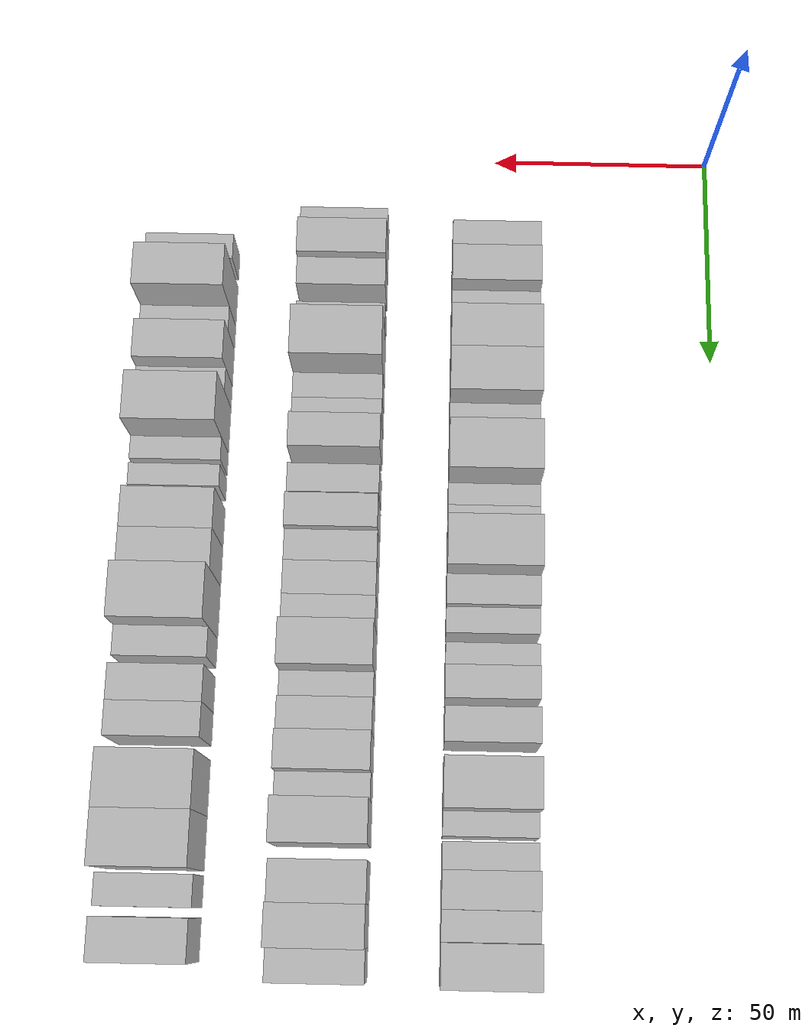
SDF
<sdf version="1.6">
 <world name="default">
  <model name="building_42">
   <static>1</static>
   <pose>50.0000 25.6167 0 0.000000 0.000000 0.000000</pose>
   <link name="link">
    <pose>0 0 7.50 0 0 0</pose>
    <collision name="collision"><geometry><box><size>20.0000 6.2672 15.0000</size></box></geometry></collision>
    <visual name="visual">
     <cast_shadows>0</cast_shadows>
     <geometry><box><size>20.0000 6.2672 15.0000</size></box></geometry>
     <material>
      <script>
       <uri>model://HANNAS_wall/materials/scripts</uri>
       <uri>model://HANNAS_wall/materials/textures</uri>
       <name>vrc/HANNAS_wall</name>
      </script>
     </material>
    </visual>
   </link>
  </model>
  <model name="building_43">
   <static>1</static>
   <pose>50.0000 34.0003 0 0.000000 0.000000 0.000000</pose>
   <link name="link">
    <pose>0 0 9.00 0 0 0</pose>
    <collision name="collision"><geometry><box><size>20.0000 8.5001 18.0000</size></box></geometry></collision>
    <visual name="visual">
     <cast_shadows>0</cast_shadows>
     <geometry><box><size>20.0000 8.5001 18.0000</size></box></geometry>
     <material>
      <script>
       <uri>model://HANNAS_wall/materials/scripts</uri>
       <uri>model://HANNAS_wall/materials/textures</uri>
       <name>vrc/HANNAS_wall</name>
      </script>
     </material>
    </visual>
   </link>
  </model>
  <model name="building_44">
   <static>1</static>
   <pose>50.0000 41.2222 0 0.000000 0.000000 0.000000</pose>
   <link name="link">
    <pose>0 0 6.00 0 0 0</pose>
    <collision name="collision"><geometry><box><size>20.0000 5.9437 12.0000</size></box></geometry></collision>
    <visual name="visual">
     <cast_shadows>0</cast_shadows>
     <geometry><box><size>20.0000 5.9437 12.0000</size></box></geometry>
     <material>
      <script>
       <uri>model://HANNAS_wall/materials/scripts</uri>
       <uri>model://HANNAS_wall/materials/textures</uri>
       <name>vrc/HANNAS_wall</name>
      </script>
     </material>
    </visual>
   </link>
  </model>
  <model name="building_45">
   <static>1</static>
   <pose>50.0000 50.1479 0 0.000000 0.000000 0.000000</pose>
   <link name="link">
    <pose>0 0 10.50 0 0 0</pose>
    <collision name="collision"><geometry><box><size>20.0000 9.9076 21.0000</size></box></geometry></collision>
    <visual name="visual">
     <cast_shadows>0</cast_shadows>
     <geometry><box><size>20.0000 9.9076 21.0000</size></box></geometry>
     <material>
      <script>
       <uri>model://HANNAS_wall/materials/scripts</uri>
       <uri>model://HANNAS_wall/materials/textures</uri>
       <name>vrc/HANNAS_wall</name>
      </script>
     </material>
    </visual>
   </link>
  </model>
  <model name="building_46">
   <static>1</static>
   <pose>50.0000 60.1215 0 0.000000 0.000000 0.000000</pose>
   <link name="link">
    <pose>0 0 10.50 0 0 0</pose>
    <collision name="collision"><geometry><box><size>20.0000 10.0396 21.0000</size></box></geometry></collision>
    <visual name="visual">
     <cast_shadows>0</cast_shadows>
     <geometry><box><size>20.0000 10.0396 21.0000</size></box></geometry>
     <material>
      <script>
       <uri>model://HANNAS_wall/materials/scripts</uri>
       <uri>model://HANNAS_wall/materials/textures</uri>
       <name>vrc/HANNAS_wall</name>
      </script>
     </material>
    </visual>
   </link>
  </model>
  <model name="building_47">
   <static>1</static>
   <pose>50.0000 67.8457 0 0.000000 0.000000 0.000000</pose>
   <link name="link">
    <pose>0 0 6.00 0 0 0</pose>
    <collision name="collision"><geometry><box><size>20.0000 5.4089 12.0000</size></box></geometry></collision>
    <visual name="visual">
     <cast_shadows>0</cast_shadows>
     <geometry><box><size>20.0000 5.4089 12.0000</size></box></geometry>
     <material>
      <script>
       <uri>model://HANNAS_wall/materials/scripts</uri>
       <uri>model://HANNAS_wall/materials/textures</uri>
       <name>vrc/HANNAS_wall</name>
      </script>
     </material>
    </visual>
   </link>
  </model>
  <model name="building_48">
   <static>1</static>
   <pose>50.0000 78.0722 0 0.000000 0.000000 0.000000</pose>
   <link name="link">
    <pose>0 0 12.00 0 0 0</pose>
    <collision name="collision"><geometry><box><size>20.0000 11.0442 24.0000</size></box></geometry></collision>
    <visual name="visual">
     <cast_shadows>0</cast_shadows>
     <geometry><box><size>20.0000 11.0442 24.0000</size></box></geometry>
     <material>
      <script>
       <uri>model://HANNAS_wall/materials/scripts</uri>
       <uri>model://HANNAS_wall/materials/textures</uri>
       <name>vrc/HANNAS_wall</name>
      </script>
     </material>
    </visual>
   </link>
  </model>
  <model name="building_49">
   <static>1</static>
   <pose>50.0000 86.0518 0 0.000000 0.000000 0.000000</pose>
   <link name="link">
    <pose>0 0 6.00 0 0 0</pose>
    <collision name="collision"><geometry><box><size>20.0000 4.9149 12.0000</size></box></geometry></collision>
    <visual name="visual">
     <cast_shadows>0</cast_shadows>
     <geometry><box><size>20.0000 4.9149 12.0000</size></box></geometry>
     <material>
      <script>
       <uri>model://HANNAS_wall/materials/scripts</uri>
       <uri>model://HANNAS_wall/materials/textures</uri>
       <name>vrc/HANNAS_wall</name>
      </script>
     </material>
    </visual>
   </link>
  </model>
  <model name="building_50">
   <static>1</static>
   <pose>50.0000 91.0404 0 0.000000 0.000000 0.000000</pose>
   <link name="link">
    <pose>0 0 6.00 0 0 0</pose>
    <collision name="collision"><geometry><box><size>20.0000 5.0623 12.0000</size></box></geometry></collision>
    <visual name="visual">
     <cast_shadows>0</cast_shadows>
     <geometry><box><size>20.0000 5.0623 12.0000</size></box></geometry>
     <material>
      <script>
       <uri>model://HANNAS_wall/materials/scripts</uri>
       <uri>model://HANNAS_wall/materials/textures</uri>
       <name>vrc/HANNAS_wall</name>
      </script>
     </material>
    </visual>
   </link>
  </model>
  <model name="building_51">
   <static>1</static>
   <pose>50.0000 99.0286 0 0.000000 0.000000 0.000000</pose>
   <link name="link">
    <pose>0 0 12.00 0 0 0</pose>
    <collision name="collision"><geometry><box><size>20.0000 10.9142 24.0000</size></box></geometry></collision>
    <visual name="visual">
     <cast_shadows>0</cast_shadows>
     <geometry><box><size>20.0000 10.9142 24.0000</size></box></geometry>
     <material>
      <script>
       <uri>model://HANNAS_wall/materials/scripts</uri>
       <uri>model://HANNAS_wall/materials/textures</uri>
       <name>vrc/HANNAS_wall</name>
      </script>
     </material>
    </visual>
   </link>
  </model>
  <model name="building_52">
   <static>1</static>
   <pose>50.0000 107.7424 0 0.000000 0.000000 0.000000</pose>
   <link name="link">
    <pose>0 0 7.50 0 0 0</pose>
    <collision name="collision"><geometry><box><size>20.0000 6.5133 15.0000</size></box></geometry></collision>
    <visual name="visual">
     <cast_shadows>0</cast_shadows>
     <geometry><box><size>20.0000 6.5133 15.0000</size></box></geometry>
     <material>
      <script>
       <uri>model://HANNAS_wall/materials/scripts</uri>
       <uri>model://HANNAS_wall/materials/textures</uri>
       <name>vrc/HANNAS_wall</name>
      </script>
     </material>
    </visual>
   </link>
  </model>
  <model name="building_53">
   <static>1</static>
   <pose>50.0000 113.8235 0 0.000000 0.000000 0.000000</pose>
   <link name="link">
    <pose>0 0 6.00 0 0 0</pose>
    <collision name="collision"><geometry><box><size>20.0000 5.6489 12.0000</size></box></geometry></collision>
    <visual name="visual">
     <cast_shadows>0</cast_shadows>
     <geometry><box><size>20.0000 5.6489 12.0000</size></box></geometry>
     <material>
      <script>
       <uri>model://HANNAS_wall/materials/scripts</uri>
       <uri>model://HANNAS_wall/materials/textures</uri>
       <name>vrc/HANNAS_wall</name>
      </script>
     </material>
    </visual>
   </link>
  </model>
  <model name="building_54">
   <static>1</static>
   <pose>50.0000 121.2309 0 0.000000 0.000000 0.000000</pose>
   <link name="link">
    <pose>0 0 6.00 0 0 0</pose>
    <collision name="collision"><geometry><box><size>20.0000 5.1659 12.0000</size></box></geometry></collision>
    <visual name="visual">
     <cast_shadows>0</cast_shadows>
     <geometry><box><size>20.0000 5.1659 12.0000</size></box></geometry>
     <material>
      <script>
       <uri>model://HANNAS_wall/materials/scripts</uri>
       <uri>model://HANNAS_wall/materials/textures</uri>
       <name>vrc/HANNAS_wall</name>
      </script>
     </material>
    </visual>
   </link>
  </model>
  <model name="building_55">
   <static>1</static>
   <pose>50.0000 127.3402 0 0.000000 0.000000 0.000000</pose>
   <link name="link">
    <pose>0 0 7.50 0 0 0</pose>
    <collision name="collision"><geometry><box><size>20.0000 7.0527 15.0000</size></box></geometry></collision>
    <visual name="visual">
     <cast_shadows>0</cast_shadows>
     <geometry><box><size>20.0000 7.0527 15.0000</size></box></geometry>
     <material>
      <script>
       <uri>model://HANNAS_wall/materials/scripts</uri>
       <uri>model://HANNAS_wall/materials/textures</uri>
       <name>vrc/HANNAS_wall</name>
      </script>
     </material>
    </visual>
   </link>
  </model>
  <model name="building_56">
   <static>1</static>
   <pose>50.0000 136.5398 0 0.000000 0.000000 0.000000</pose>
   <link name="link">
    <pose>0 0 9.00 0 0 0</pose>
    <collision name="collision"><geometry><box><size>20.0000 7.3465 18.0000</size></box></geometry></collision>
    <visual name="visual">
     <cast_shadows>0</cast_shadows>
     <geometry><box><size>20.0000 7.3465 18.0000</size></box></geometry>
     <material>
      <script>
       <uri>model://HANNAS_wall/materials/scripts</uri>
       <uri>model://HANNAS_wall/materials/textures</uri>
       <name>vrc/HANNAS_wall</name>
      </script>
     </material>
    </visual>
   </link>
  </model>
  <model name="building_57">
   <static>1</static>
   <pose>50.0000 148.4496 0 0.000000 0.000000 0.000000</pose>
   <link name="link">
    <pose>0 0 10.50 0 0 0</pose>
    <collision name="collision"><geometry><box><size>20.0000 10.4731 21.0000</size></box></geometry></collision>
    <visual name="visual">
     <cast_shadows>0</cast_shadows>
     <geometry><box><size>20.0000 10.4731 21.0000</size></box></geometry>
     <material>
      <script>
       <uri>model://HANNAS_wall/materials/scripts</uri>
       <uri>model://HANNAS_wall/materials/textures</uri>
       <name>vrc/HANNAS_wall</name>
      </script>
     </material>
    </visual>
   </link>
  </model>
  <model name="building_58">
   <static>1</static>
   <pose>50.0000 156.2584 0 0.000000 0.000000 0.000000</pose>
   <link name="link">
    <pose>0 0 6.00 0 0 0</pose>
    <collision name="collision"><geometry><box><size>20.0000 5.1445 12.0000</size></box></geometry></collision>
    <visual name="visual">
     <cast_shadows>0</cast_shadows>
     <geometry><box><size>20.0000 5.1445 12.0000</size></box></geometry>
     <material>
      <script>
       <uri>model://HANNAS_wall/materials/scripts</uri>
       <uri>model://HANNAS_wall/materials/textures</uri>
       <name>vrc/HANNAS_wall</name>
      </script>
     </material>
    </visual>
   </link>
  </model>
  <model name="building_59">
   <static>1</static>
   <pose>50.0000 162.7221 0 0.000000 0.000000 0.000000</pose>
   <link name="link">
    <pose>0 0 6.00 0 0 0</pose>
    <collision name="collision"><geometry><box><size>20.0000 5.7830 12.0000</size></box></geometry></collision>
    <visual name="visual">
     <cast_shadows>0</cast_shadows>
     <geometry><box><size>20.0000 5.7830 12.0000</size></box></geometry>
     <material>
      <script>
       <uri>model://HANNAS_wall/materials/scripts</uri>
       <uri>model://HANNAS_wall/materials/textures</uri>
       <name>vrc/HANNAS_wall</name>
      </script>
     </material>
    </visual>
   </link>
  </model>
  <model name="building_60">
   <static>1</static>
   <pose>50.0000 169.4522 0 0.000000 0.000000 0.000000</pose>
   <link name="link">
    <pose>0 0 9.00 0 0 0</pose>
    <collision name="collision"><geometry><box><size>20.0000 7.6771 18.0000</size></box></geometry></collision>
    <visual name="visual">
     <cast_shadows>0</cast_shadows>
     <geometry><box><size>20.0000 7.6771 18.0000</size></box></geometry>
     <material>
      <script>
       <uri>model://HANNAS_wall/materials/scripts</uri>
       <uri>model://HANNAS_wall/materials/textures</uri>
       <name>vrc/HANNAS_wall</name>
      </script>
     </material>
    </visual>
   </link>
  </model>
  <model name="building_61">
   <static>1</static>
   <pose>50.0000 176.4207 0 0.000000 0.000000 0.000000</pose>
   <link name="link">
    <pose>0 0 7.50 0 0 0</pose>
    <collision name="collision"><geometry><box><size>20.0000 6.2599 15.0000</size></box></geometry></collision>
    <visual name="visual">
     <cast_shadows>0</cast_shadows>
     <geometry><box><size>20.0000 6.2599 15.0000</size></box></geometry>
     <material>
      <script>
       <uri>model://HANNAS_wall/materials/scripts</uri>
       <uri>model://HANNAS_wall/materials/textures</uri>
       <name>vrc/HANNAS_wall</name>
      </script>
     </material>
    </visual>
   </link>
  </model>
  <model name="building_62">
   <static>1</static>
   <pose>50.0000 183.9957 0 0.000000 0.000000 0.000000</pose>
   <link name="link">
    <pose>0 0 10.50 0 0 0</pose>
    <collision name="collision"><geometry><box><size>20.0000 8.8902 21.0000</size></box></geometry></collision>
    <visual name="visual">
     <cast_shadows>0</cast_shadows>
     <geometry><box><size>20.0000 8.8902 21.0000</size></box></geometry>
     <material>
      <script>
       <uri>model://HANNAS_wall/materials/scripts</uri>
       <uri>model://HANNAS_wall/materials/textures</uri>
       <name>vrc/HANNAS_wall</name>
      </script>
     </material>
    </visual>
   </link>
  </model>
  <model name="building_126">
   <static>1</static>
   <pose>85.0000 21.1926 0 0.000000 0.000000 0.000000</pose>
   <link name="link">
    <pose>0 0 6.00 0 0 0</pose>
    <collision name="collision"><geometry><box><size>20.0000 5.5443 12.0000</size></box></geometry></collision>
    <visual name="visual">
     <cast_shadows>0</cast_shadows>
     <geometry><box><size>20.0000 5.5443 12.0000</size></box></geometry>
     <material>
      <script>
       <uri>model://HANNAS_wall/materials/scripts</uri>
       <uri>model://HANNAS_wall/materials/textures</uri>
       <name>vrc/HANNAS_wall</name>
      </script>
     </material>
    </visual>
   </link>
  </model>
  <model name="building_127">
   <static>1</static>
   <pose>85.0000 28.0920 0 0.000000 0.000000 0.000000</pose>
   <link name="link">
    <pose>0 0 9.00 0 0 0</pose>
    <collision name="collision"><geometry><box><size>20.0000 8.2546 18.0000</size></box></geometry></collision>
    <visual name="visual">
     <cast_shadows>0</cast_shadows>
     <geometry><box><size>20.0000 8.2546 18.0000</size></box></geometry>
     <material>
      <script>
       <uri>model://HANNAS_wall/materials/scripts</uri>
       <uri>model://HANNAS_wall/materials/textures</uri>
       <name>vrc/HANNAS_wall</name>
      </script>
     </material>
    </visual>
   </link>
  </model>
  <model name="building_128">
   <static>1</static>
   <pose>85.0000 35.4796 0 0.000000 0.000000 0.000000</pose>
   <link name="link">
    <pose>0 0 7.50 0 0 0</pose>
    <collision name="collision"><geometry><box><size>20.0000 6.5206 15.0000</size></box></geometry></collision>
    <visual name="visual">
     <cast_shadows>0</cast_shadows>
     <geometry><box><size>20.0000 6.5206 15.0000</size></box></geometry>
     <material>
      <script>
       <uri>model://HANNAS_wall/materials/scripts</uri>
       <uri>model://HANNAS_wall/materials/textures</uri>
       <name>vrc/HANNAS_wall</name>
      </script>
     </material>
    </visual>
   </link>
  </model>
  <model name="building_129">
   <static>1</static>
   <pose>85.0000 44.1518 0 0.000000 0.000000 0.000000</pose>
   <link name="link">
    <pose>0 0 6.00 0 0 0</pose>
    <collision name="collision"><geometry><box><size>20.0000 4.8237 12.0000</size></box></geometry></collision>
    <visual name="visual">
     <cast_shadows>0</cast_shadows>
     <geometry><box><size>20.0000 4.8237 12.0000</size></box></geometry>
     <material>
      <script>
       <uri>model://HANNAS_wall/materials/scripts</uri>
       <uri>model://HANNAS_wall/materials/textures</uri>
       <name>vrc/HANNAS_wall</name>
      </script>
     </material>
    </visual>
   </link>
  </model>
  <model name="building_130">
   <static>1</static>
   <pose>85.0000 53.1601 0 0.000000 0.000000 0.000000</pose>
   <link name="link">
    <pose>0 0 12.00 0 0 0</pose>
    <collision name="collision"><geometry><box><size>20.0000 11.1931 24.0000</size></box></geometry></collision>
    <visual name="visual">
     <cast_shadows>0</cast_shadows>
     <geometry><box><size>20.0000 11.1931 24.0000</size></box></geometry>
     <material>
      <script>
       <uri>model://HANNAS_wall/materials/scripts</uri>
       <uri>model://HANNAS_wall/materials/textures</uri>
       <name>vrc/HANNAS_wall</name>
      </script>
     </material>
    </visual>
   </link>
  </model>
  <model name="building_131">
   <static>1</static>
   <pose>85.0000 61.6597 0 0.000000 0.000000 0.000000</pose>
   <link name="link">
    <pose>0 0 6.00 0 0 0</pose>
    <collision name="collision"><geometry><box><size>20.0000 5.8061 12.0000</size></box></geometry></collision>
    <visual name="visual">
     <cast_shadows>0</cast_shadows>
     <geometry><box><size>20.0000 5.8061 12.0000</size></box></geometry>
     <material>
      <script>
       <uri>model://HANNAS_wall/materials/scripts</uri>
       <uri>model://HANNAS_wall/materials/textures</uri>
       <name>vrc/HANNAS_wall</name>
      </script>
     </material>
    </visual>
   </link>
  </model>
  <model name="building_132">
   <static>1</static>
   <pose>85.0000 67.2790 0 0.000000 0.000000 0.000000</pose>
   <link name="link">
    <pose>0 0 6.00 0 0 0</pose>
    <collision name="collision"><geometry><box><size>20.0000 5.4325 12.0000</size></box></geometry></collision>
    <visual name="visual">
     <cast_shadows>0</cast_shadows>
     <geometry><box><size>20.0000 5.4325 12.0000</size></box></geometry>
     <material>
      <script>
       <uri>model://HANNAS_wall/materials/scripts</uri>
       <uri>model://HANNAS_wall/materials/textures</uri>
       <name>vrc/HANNAS_wall</name>
      </script>
     </material>
    </visual>
   </link>
  </model>
  <model name="building_133">
   <static>1</static>
   <pose>85.0000 73.8248 0 0.000000 0.000000 0.000000</pose>
   <link name="link">
    <pose>0 0 9.00 0 0 0</pose>
    <collision name="collision"><geometry><box><size>20.0000 7.6593 18.0000</size></box></geometry></collision>
    <visual name="visual">
     <cast_shadows>0</cast_shadows>
     <geometry><box><size>20.0000 7.6593 18.0000</size></box></geometry>
     <material>
      <script>
       <uri>model://HANNAS_wall/materials/scripts</uri>
       <uri>model://HANNAS_wall/materials/textures</uri>
       <name>vrc/HANNAS_wall</name>
      </script>
     </material>
    </visual>
   </link>
  </model>
  <model name="building_134">
   <static>1</static>
   <pose>85.0000 83.8509 0 0.000000 0.000000 0.000000</pose>
   <link name="link">
    <pose>0 0 7.50 0 0 0</pose>
    <collision name="collision"><geometry><box><size>20.0000 6.3928 15.0000</size></box></geometry></collision>
    <visual name="visual">
     <cast_shadows>0</cast_shadows>
     <geometry><box><size>20.0000 6.3928 15.0000</size></box></geometry>
     <material>
      <script>
       <uri>model://HANNAS_wall/materials/scripts</uri>
       <uri>model://HANNAS_wall/materials/textures</uri>
       <name>vrc/HANNAS_wall</name>
      </script>
     </material>
    </visual>
   </link>
  </model>
  <model name="building_135">
   <static>1</static>
   <pose>85.0000 91.7288 0 0.000000 0.000000 0.000000</pose>
   <link name="link">
    <pose>0 0 9.00 0 0 0</pose>
    <collision name="collision"><geometry><box><size>20.0000 7.3629 18.0000</size></box></geometry></collision>
    <visual name="visual">
     <cast_shadows>0</cast_shadows>
     <geometry><box><size>20.0000 7.3629 18.0000</size></box></geometry>
     <material>
      <script>
       <uri>model://HANNAS_wall/materials/scripts</uri>
       <uri>model://HANNAS_wall/materials/textures</uri>
       <name>vrc/HANNAS_wall</name>
      </script>
     </material>
    </visual>
   </link>
  </model>
  <model name="building_136">
   <static>1</static>
   <pose>85.0000 98.8065 0 0.000000 0.000000 0.000000</pose>
   <link name="link">
    <pose>0 0 7.50 0 0 0</pose>
    <collision name="collision"><geometry><box><size>20.0000 6.7927 15.0000</size></box></geometry></collision>
    <visual name="visual">
     <cast_shadows>0</cast_shadows>
     <geometry><box><size>20.0000 6.7927 15.0000</size></box></geometry>
     <material>
      <script>
       <uri>model://HANNAS_wall/materials/scripts</uri>
       <uri>model://HANNAS_wall/materials/textures</uri>
       <name>vrc/HANNAS_wall</name>
      </script>
     </material>
    </visual>
   </link>
  </model>
  <model name="building_137">
   <static>1</static>
   <pose>85.0000 105.8592 0 0.000000 0.000000 0.000000</pose>
   <link name="link">
    <pose>0 0 7.50 0 0 0</pose>
    <collision name="collision"><geometry><box><size>20.0000 7.3127 15.0000</size></box></geometry></collision>
    <visual name="visual">
     <cast_shadows>0</cast_shadows>
     <geometry><box><size>20.0000 7.3127 15.0000</size></box></geometry>
     <material>
      <script>
       <uri>model://HANNAS_wall/materials/scripts</uri>
       <uri>model://HANNAS_wall/materials/textures</uri>
       <name>vrc/HANNAS_wall</name>
      </script>
     </material>
    </visual>
   </link>
  </model>
  <model name="building_138">
   <static>1</static>
   <pose>85.0000 112.5890 0 0.000000 0.000000 0.000000</pose>
   <link name="link">
    <pose>0 0 7.50 0 0 0</pose>
    <collision name="collision"><geometry><box><size>20.0000 6.1469 15.0000</size></box></geometry></collision>
    <visual name="visual">
     <cast_shadows>0</cast_shadows>
     <geometry><box><size>20.0000 6.1469 15.0000</size></box></geometry>
     <material>
      <script>
       <uri>model://HANNAS_wall/materials/scripts</uri>
       <uri>model://HANNAS_wall/materials/textures</uri>
       <name>vrc/HANNAS_wall</name>
      </script>
     </material>
    </visual>
   </link>
  </model>
  <model name="building_139">
   <static>1</static>
   <pose>85.0000 120.5077 0 0.000000 0.000000 0.000000</pose>
   <link name="link">
    <pose>0 0 10.50 0 0 0</pose>
    <collision name="collision"><geometry><box><size>20.0000 9.6904 21.0000</size></box></geometry></collision>
    <visual name="visual">
     <cast_shadows>0</cast_shadows>
     <geometry><box><size>20.0000 9.6904 21.0000</size></box></geometry>
     <material>
      <script>
       <uri>model://HANNAS_wall/materials/scripts</uri>
       <uri>model://HANNAS_wall/materials/textures</uri>
       <name>vrc/HANNAS_wall</name>
      </script>
     </material>
    </visual>
   </link>
  </model>
  <model name="building_140">
   <static>1</static>
   <pose>85.0000 128.2171 0 0.000000 0.000000 0.000000</pose>
   <link name="link">
    <pose>0 0 6.00 0 0 0</pose>
    <collision name="collision"><geometry><box><size>20.0000 5.7284 12.0000</size></box></geometry></collision>
    <visual name="visual">
     <cast_shadows>0</cast_shadows>
     <geometry><box><size>20.0000 5.7284 12.0000</size></box></geometry>
     <material>
      <script>
       <uri>model://HANNAS_wall/materials/scripts</uri>
       <uri>model://HANNAS_wall/materials/textures</uri>
       <name>vrc/HANNAS_wall</name>
      </script>
     </material>
    </visual>
   </link>
  </model>
  <model name="building_141">
   <static>1</static>
   <pose>85.0000 134.6578 0 0.000000 0.000000 0.000000</pose>
   <link name="link">
    <pose>0 0 7.50 0 0 0</pose>
    <collision name="collision"><geometry><box><size>20.0000 7.1529 15.0000</size></box></geometry></collision>
    <visual name="visual">
     <cast_shadows>0</cast_shadows>
     <geometry><box><size>20.0000 7.1529 15.0000</size></box></geometry>
     <material>
      <script>
       <uri>model://HANNAS_wall/materials/scripts</uri>
       <uri>model://HANNAS_wall/materials/textures</uri>
       <name>vrc/HANNAS_wall</name>
      </script>
     </material>
    </visual>
   </link>
  </model>
  <model name="building_142">
   <static>1</static>
   <pose>85.0000 142.2877 0 0.000000 0.000000 0.000000</pose>
   <link name="link">
    <pose>0 0 9.00 0 0 0</pose>
    <collision name="collision"><geometry><box><size>20.0000 8.1069 18.0000</size></box></geometry></collision>
    <visual name="visual">
     <cast_shadows>0</cast_shadows>
     <geometry><box><size>20.0000 8.1069 18.0000</size></box></geometry>
     <material>
      <script>
       <uri>model://HANNAS_wall/materials/scripts</uri>
       <uri>model://HANNAS_wall/materials/textures</uri>
       <name>vrc/HANNAS_wall</name>
      </script>
     </material>
    </visual>
   </link>
  </model>
  <model name="building_143">
   <static>1</static>
   <pose>85.0000 149.1492 0 0.000000 0.000000 0.000000</pose>
   <link name="link">
    <pose>0 0 6.00 0 0 0</pose>
    <collision name="collision"><geometry><box><size>20.0000 5.6162 12.0000</size></box></geometry></collision>
    <visual name="visual">
     <cast_shadows>0</cast_shadows>
     <geometry><box><size>20.0000 5.6162 12.0000</size></box></geometry>
     <material>
      <script>
       <uri>model://HANNAS_wall/materials/scripts</uri>
       <uri>model://HANNAS_wall/materials/textures</uri>
       <name>vrc/HANNAS_wall</name>
      </script>
     </material>
    </visual>
   </link>
  </model>
  <model name="building_144">
   <static>1</static>
   <pose>85.0000 156.5410 0 0.000000 0.000000 0.000000</pose>
   <link name="link">
    <pose>0 0 10.50 0 0 0</pose>
    <collision name="collision"><geometry><box><size>20.0000 9.1675 21.0000</size></box></geometry></collision>
    <visual name="visual">
     <cast_shadows>0</cast_shadows>
     <geometry><box><size>20.0000 9.1675 21.0000</size></box></geometry>
     <material>
      <script>
       <uri>model://HANNAS_wall/materials/scripts</uri>
       <uri>model://HANNAS_wall/materials/textures</uri>
       <name>vrc/HANNAS_wall</name>
      </script>
     </material>
    </visual>
   </link>
  </model>
  <model name="building_145">
   <static>1</static>
   <pose>85.0000 168.3814 0 0.000000 0.000000 0.000000</pose>
   <link name="link">
    <pose>0 0 9.00 0 0 0</pose>
    <collision name="collision"><geometry><box><size>20.0000 8.5133 18.0000</size></box></geometry></collision>
    <visual name="visual">
     <cast_shadows>0</cast_shadows>
     <geometry><box><size>20.0000 8.5133 18.0000</size></box></geometry>
     <material>
      <script>
       <uri>model://HANNAS_wall/materials/scripts</uri>
       <uri>model://HANNAS_wall/materials/textures</uri>
       <name>vrc/HANNAS_wall</name>
      </script>
     </material>
    </visual>
   </link>
  </model>
  <model name="building_146">
   <static>1</static>
   <pose>85.0000 176.9449 0 0.000000 0.000000 0.000000</pose>
   <link name="link">
    <pose>0 0 10.50 0 0 0</pose>
    <collision name="collision"><geometry><box><size>20.0000 8.6137 21.0000</size></box></geometry></collision>
    <visual name="visual">
     <cast_shadows>0</cast_shadows>
     <geometry><box><size>20.0000 8.6137 21.0000</size></box></geometry>
     <material>
      <script>
       <uri>model://HANNAS_wall/materials/scripts</uri>
       <uri>model://HANNAS_wall/materials/textures</uri>
       <name>vrc/HANNAS_wall</name>
      </script>
     </material>
    </visual>
   </link>
  </model>
  <model name="building_147">
   <static>1</static>
   <pose>85.0000 184.6578 0 0.000000 0.000000 0.000000</pose>
   <link name="link">
    <pose>0 0 7.50 0 0 0</pose>
    <collision name="collision"><geometry><box><size>20.0000 6.8122 15.0000</size></box></geometry></collision>
    <visual name="visual">
     <cast_shadows>0</cast_shadows>
     <geometry><box><size>20.0000 6.8122 15.0000</size></box></geometry>
     <material>
      <script>
       <uri>model://HANNAS_wall/materials/scripts</uri>
       <uri>model://HANNAS_wall/materials/textures</uri>
       <name>vrc/HANNAS_wall</name>
      </script>
     </material>
    </visual>
   </link>
  </model>
  <model name="building_206">
   <static>1</static>
   <pose>120.0000 28.6185 0 0.000000 0.000000 0.000000</pose>
   <link name="link">
    <pose>0 0 6.00 0 0 0</pose>
    <collision name="collision"><geometry><box><size>20.0000 5.9945 12.0000</size></box></geometry></collision>
    <visual name="visual">
     <cast_shadows>0</cast_shadows>
     <geometry><box><size>20.0000 5.9945 12.0000</size></box></geometry>
     <material>
      <script>
       <uri>model://HANNAS_wall/materials/scripts</uri>
       <uri>model://HANNAS_wall/materials/textures</uri>
       <name>vrc/HANNAS_wall</name>
      </script>
     </material>
    </visual>
   </link>
  </model>
  <model name="building_207">
   <static>1</static>
   <pose>120.0000 38.4931 0 0.000000 0.000000 0.000000</pose>
   <link name="link">
    <pose>0 0 12.00 0 0 0</pose>
    <collision name="collision"><geometry><box><size>20.0000 9.7549 24.0000</size></box></geometry></collision>
    <visual name="visual">
     <cast_shadows>0</cast_shadows>
     <geometry><box><size>20.0000 9.7549 24.0000</size></box></geometry>
     <material>
      <script>
       <uri>model://HANNAS_wall/materials/scripts</uri>
       <uri>model://HANNAS_wall/materials/textures</uri>
       <name>vrc/HANNAS_wall</name>
      </script>
     </material>
    </visual>
   </link>
  </model>
  <model name="building_208">
   <static>1</static>
   <pose>120.0000 46.2275 0 0.000000 0.000000 0.000000</pose>
   <link name="link">
    <pose>0 0 6.00 0 0 0</pose>
    <collision name="collision"><geometry><box><size>20.0000 5.7139 12.0000</size></box></geometry></collision>
    <visual name="visual">
     <cast_shadows>0</cast_shadows>
     <geometry><box><size>20.0000 5.7139 12.0000</size></box></geometry>
     <material>
      <script>
       <uri>model://HANNAS_wall/materials/scripts</uri>
       <uri>model://HANNAS_wall/materials/textures</uri>
       <name>vrc/HANNAS_wall</name>
      </script>
     </material>
    </visual>
   </link>
  </model>
  <model name="building_209">
   <static>1</static>
   <pose>120.0000 53.5511 0 0.000000 0.000000 0.000000</pose>
   <link name="link">
    <pose>0 0 9.00 0 0 0</pose>
    <collision name="collision"><geometry><box><size>20.0000 8.9334 18.0000</size></box></geometry></collision>
    <visual name="visual">
     <cast_shadows>0</cast_shadows>
     <geometry><box><size>20.0000 8.9334 18.0000</size></box></geometry>
     <material>
      <script>
       <uri>model://HANNAS_wall/materials/scripts</uri>
       <uri>model://HANNAS_wall/materials/textures</uri>
       <name>vrc/HANNAS_wall</name>
      </script>
     </material>
    </visual>
   </link>
  </model>
  <model name="building_210">
   <static>1</static>
   <pose>120.0000 60.7255 0 0.000000 0.000000 0.000000</pose>
   <link name="link">
    <pose>0 0 6.00 0 0 0</pose>
    <collision name="collision"><geometry><box><size>20.0000 5.4154 12.0000</size></box></geometry></collision>
    <visual name="visual">
     <cast_shadows>0</cast_shadows>
     <geometry><box><size>20.0000 5.4154 12.0000</size></box></geometry>
     <material>
      <script>
       <uri>model://HANNAS_wall/materials/scripts</uri>
       <uri>model://HANNAS_wall/materials/textures</uri>
       <name>vrc/HANNAS_wall</name>
      </script>
     </material>
    </visual>
   </link>
  </model>
  <model name="building_211">
   <static>1</static>
   <pose>120.0000 68.8540 0 0.000000 0.000000 0.000000</pose>
   <link name="link">
    <pose>0 0 12.00 0 0 0</pose>
    <collision name="collision"><geometry><box><size>20.0000 10.8415 24.0000</size></box></geometry></collision>
    <visual name="visual">
     <cast_shadows>0</cast_shadows>
     <geometry><box><size>20.0000 10.8415 24.0000</size></box></geometry>
     <material>
      <script>
       <uri>model://HANNAS_wall/materials/scripts</uri>
       <uri>model://HANNAS_wall/materials/textures</uri>
       <name>vrc/HANNAS_wall</name>
      </script>
     </material>
    </visual>
   </link>
  </model>
  <model name="building_212">
   <static>1</static>
   <pose>120.0000 76.8658 0 0.000000 0.000000 0.000000</pose>
   <link name="link">
    <pose>0 0 6.00 0 0 0</pose>
    <collision name="collision"><geometry><box><size>20.0000 5.1820 12.0000</size></box></geometry></collision>
    <visual name="visual">
     <cast_shadows>0</cast_shadows>
     <geometry><box><size>20.0000 5.1820 12.0000</size></box></geometry>
     <material>
      <script>
       <uri>model://HANNAS_wall/materials/scripts</uri>
       <uri>model://HANNAS_wall/materials/textures</uri>
       <name>vrc/HANNAS_wall</name>
      </script>
     </material>
    </visual>
   </link>
  </model>
  <model name="building_213">
   <static>1</static>
   <pose>120.0000 82.9382 0 0.000000 0.000000 0.000000</pose>
   <link name="link">
    <pose>0 0 6.00 0 0 0</pose>
    <collision name="collision"><geometry><box><size>20.0000 4.9629 12.0000</size></box></geometry></collision>
    <visual name="visual">
     <cast_shadows>0</cast_shadows>
     <geometry><box><size>20.0000 4.9629 12.0000</size></box></geometry>
     <material>
      <script>
       <uri>model://HANNAS_wall/materials/scripts</uri>
       <uri>model://HANNAS_wall/materials/textures</uri>
       <name>vrc/HANNAS_wall</name>
      </script>
     </material>
    </visual>
   </link>
  </model>
  <model name="building_214">
   <static>1</static>
   <pose>120.0000 91.8942 0 0.000000 0.000000 0.000000</pose>
   <link name="link">
    <pose>0 0 9.00 0 0 0</pose>
    <collision name="collision"><geometry><box><size>20.0000 8.9491 18.0000</size></box></geometry></collision>
    <visual name="visual">
     <cast_shadows>0</cast_shadows>
     <geometry><box><size>20.0000 8.9491 18.0000</size></box></geometry>
     <material>
      <script>
       <uri>model://HANNAS_wall/materials/scripts</uri>
       <uri>model://HANNAS_wall/materials/textures</uri>
       <name>vrc/HANNAS_wall</name>
      </script>
     </material>
    </visual>
   </link>
  </model>
  <model name="building_215">
   <static>1</static>
   <pose>120.0000 100.7614 0 0.000000 0.000000 0.000000</pose>
   <link name="link">
    <pose>0 0 9.00 0 0 0</pose>
    <collision name="collision"><geometry><box><size>20.0000 8.7853 18.0000</size></box></geometry></collision>
    <visual name="visual">
     <cast_shadows>0</cast_shadows>
     <geometry><box><size>20.0000 8.7853 18.0000</size></box></geometry>
     <material>
      <script>
       <uri>model://HANNAS_wall/materials/scripts</uri>
       <uri>model://HANNAS_wall/materials/textures</uri>
       <name>vrc/HANNAS_wall</name>
      </script>
     </material>
    </visual>
   </link>
  </model>
  <model name="building_216">
   <static>1</static>
   <pose>120.0000 111.0424 0 0.000000 0.000000 0.000000</pose>
   <link name="link">
    <pose>0 0 12.00 0 0 0</pose>
    <collision name="collision"><geometry><box><size>20.0000 11.7765 24.0000</size></box></geometry></collision>
    <visual name="visual">
     <cast_shadows>0</cast_shadows>
     <geometry><box><size>20.0000 11.7765 24.0000</size></box></geometry>
     <material>
      <script>
       <uri>model://HANNAS_wall/materials/scripts</uri>
       <uri>model://HANNAS_wall/materials/textures</uri>
       <name>vrc/HANNAS_wall</name>
      </script>
     </material>
    </visual>
   </link>
  </model>
  <model name="building_217">
   <static>1</static>
   <pose>120.0000 120.1880 0 0.000000 0.000000 0.000000</pose>
   <link name="link">
    <pose>0 0 7.50 0 0 0</pose>
    <collision name="collision"><geometry><box><size>20.0000 6.5148 15.0000</size></box></geometry></collision>
    <visual name="visual">
     <cast_shadows>0</cast_shadows>
     <geometry><box><size>20.0000 6.5148 15.0000</size></box></geometry>
     <material>
      <script>
       <uri>model://HANNAS_wall/materials/scripts</uri>
       <uri>model://HANNAS_wall/materials/textures</uri>
       <name>vrc/HANNAS_wall</name>
      </script>
     </material>
    </visual>
   </link>
  </model>
  <model name="building_218">
   <static>1</static>
   <pose>120.0000 129.2995 0 0.000000 0.000000 0.000000</pose>
   <link name="link">
    <pose>0 0 9.00 0 0 0</pose>
    <collision name="collision"><geometry><box><size>20.0000 7.7082 18.0000</size></box></geometry></collision>
    <visual name="visual">
     <cast_shadows>0</cast_shadows>
     <geometry><box><size>20.0000 7.7082 18.0000</size></box></geometry>
     <material>
      <script>
       <uri>model://HANNAS_wall/materials/scripts</uri>
       <uri>model://HANNAS_wall/materials/textures</uri>
       <name>vrc/HANNAS_wall</name>
      </script>
     </material>
    </visual>
   </link>
  </model>
  <model name="building_219">
   <static>1</static>
   <pose>120.0000 136.7806 0 0.000000 0.000000 0.000000</pose>
   <link name="link">
    <pose>0 0 9.00 0 0 0</pose>
    <collision name="collision"><geometry><box><size>20.0000 7.2540 18.0000</size></box></geometry></collision>
    <visual name="visual">
     <cast_shadows>0</cast_shadows>
     <geometry><box><size>20.0000 7.2540 18.0000</size></box></geometry>
     <material>
      <script>
       <uri>model://HANNAS_wall/materials/scripts</uri>
       <uri>model://HANNAS_wall/materials/textures</uri>
       <name>vrc/HANNAS_wall</name>
      </script>
     </material>
    </visual>
   </link>
  </model>
  <model name="building_220">
   <static>1</static>
   <pose>120.0000 149.3122 0 0.000000 0.000000 0.000000</pose>
   <link name="link">
    <pose>0 0 12.00 0 0 0</pose>
    <collision name="collision"><geometry><box><size>20.0000 11.8092 24.0000</size></box></geometry></collision>
    <visual name="visual">
     <cast_shadows>0</cast_shadows>
     <geometry><box><size>20.0000 11.8092 24.0000</size></box></geometry>
     <material>
      <script>
       <uri>model://HANNAS_wall/materials/scripts</uri>
       <uri>model://HANNAS_wall/materials/textures</uri>
       <name>vrc/HANNAS_wall</name>
      </script>
     </material>
    </visual>
   </link>
  </model>
  <model name="building_221">
   <static>1</static>
   <pose>120.0000 160.8671 0 0.000000 0.000000 0.000000</pose>
   <link name="link">
    <pose>0 0 12.00 0 0 0</pose>
    <collision name="collision"><geometry><box><size>20.0000 11.3004 24.0000</size></box></geometry></collision>
    <visual name="visual">
     <cast_shadows>0</cast_shadows>
     <geometry><box><size>20.0000 11.3004 24.0000</size></box></geometry>
     <material>
      <script>
       <uri>model://HANNAS_wall/materials/scripts</uri>
       <uri>model://HANNAS_wall/materials/textures</uri>
       <name>vrc/HANNAS_wall</name>
      </script>
     </material>
    </visual>
   </link>
  </model>
  <model name="building_222">
   <static>1</static>
   <pose>120.0000 170.7917 0 0.000000 0.000000 0.000000</pose>
   <link name="link">
    <pose>0 0 7.50 0 0 0</pose>
    <collision name="collision"><geometry><box><size>20.0000 6.5489 15.0000</size></box></geometry></collision>
    <visual name="visual">
     <cast_shadows>0</cast_shadows>
     <geometry><box><size>20.0000 6.5489 15.0000</size></box></geometry>
     <material>
      <script>
       <uri>model://HANNAS_wall/materials/scripts</uri>
       <uri>model://HANNAS_wall/materials/textures</uri>
       <name>vrc/HANNAS_wall</name>
      </script>
     </material>
    </visual>
   </link>
  </model>
  <model name="building_223">
   <static>1</static>
   <pose>120.0000 180.4511 0 0.000000 0.000000 0.000000</pose>
   <link name="link">
    <pose>0 0 9.00 0 0 0</pose>
    <collision name="collision"><geometry><box><size>20.0000 8.7698 18.0000</size></box></geometry></collision>
    <visual name="visual">
     <cast_shadows>0</cast_shadows>
     <geometry><box><size>20.0000 8.7698 18.0000</size></box></geometry>
     <material>
      <script>
       <uri>model://HANNAS_wall/materials/scripts</uri>
       <uri>model://HANNAS_wall/materials/textures</uri>
       <name>vrc/HANNAS_wall</name>
      </script>
     </material>
    </visual>
   </link>
  </model>
 </world>
</sdf>
